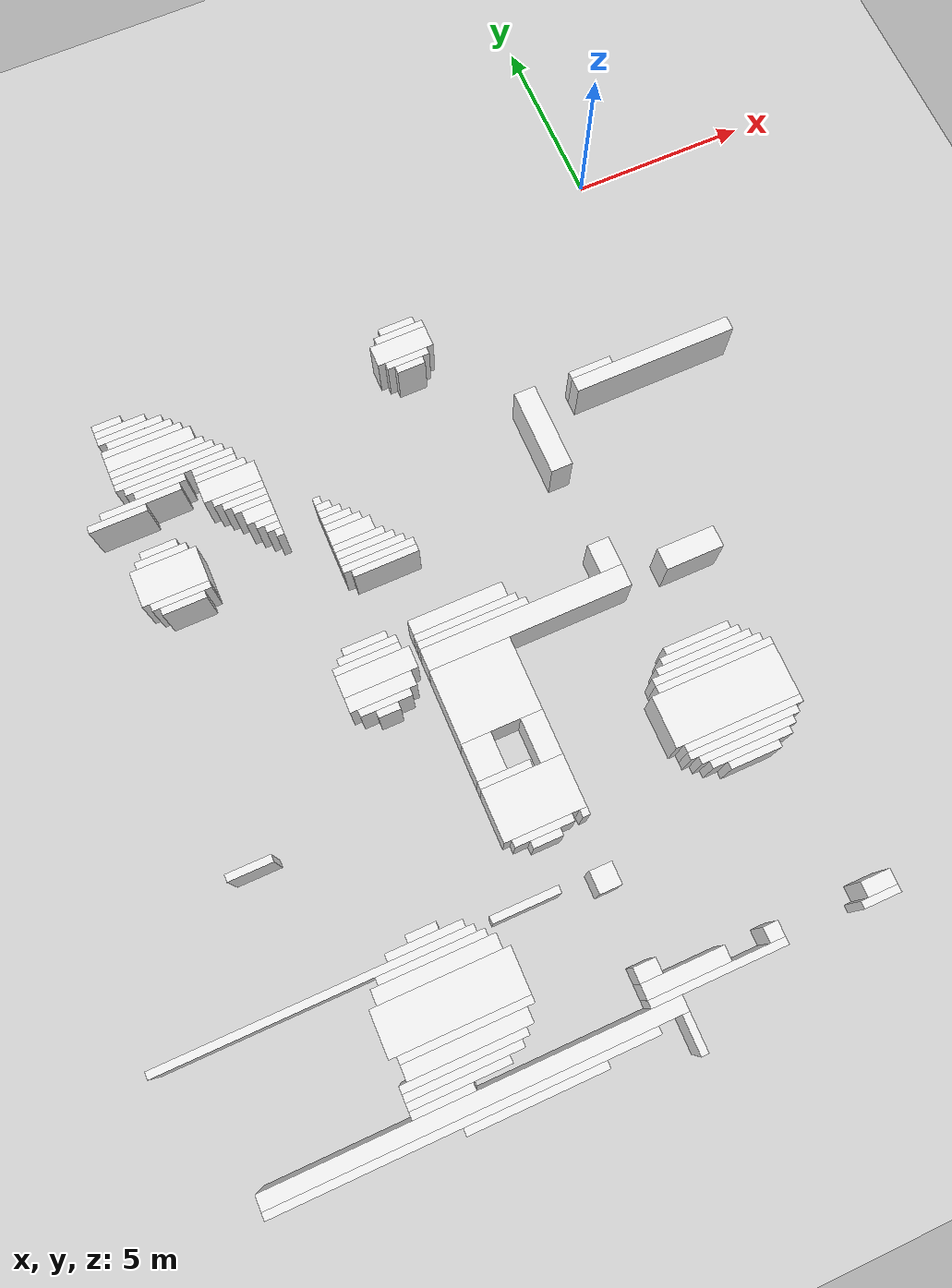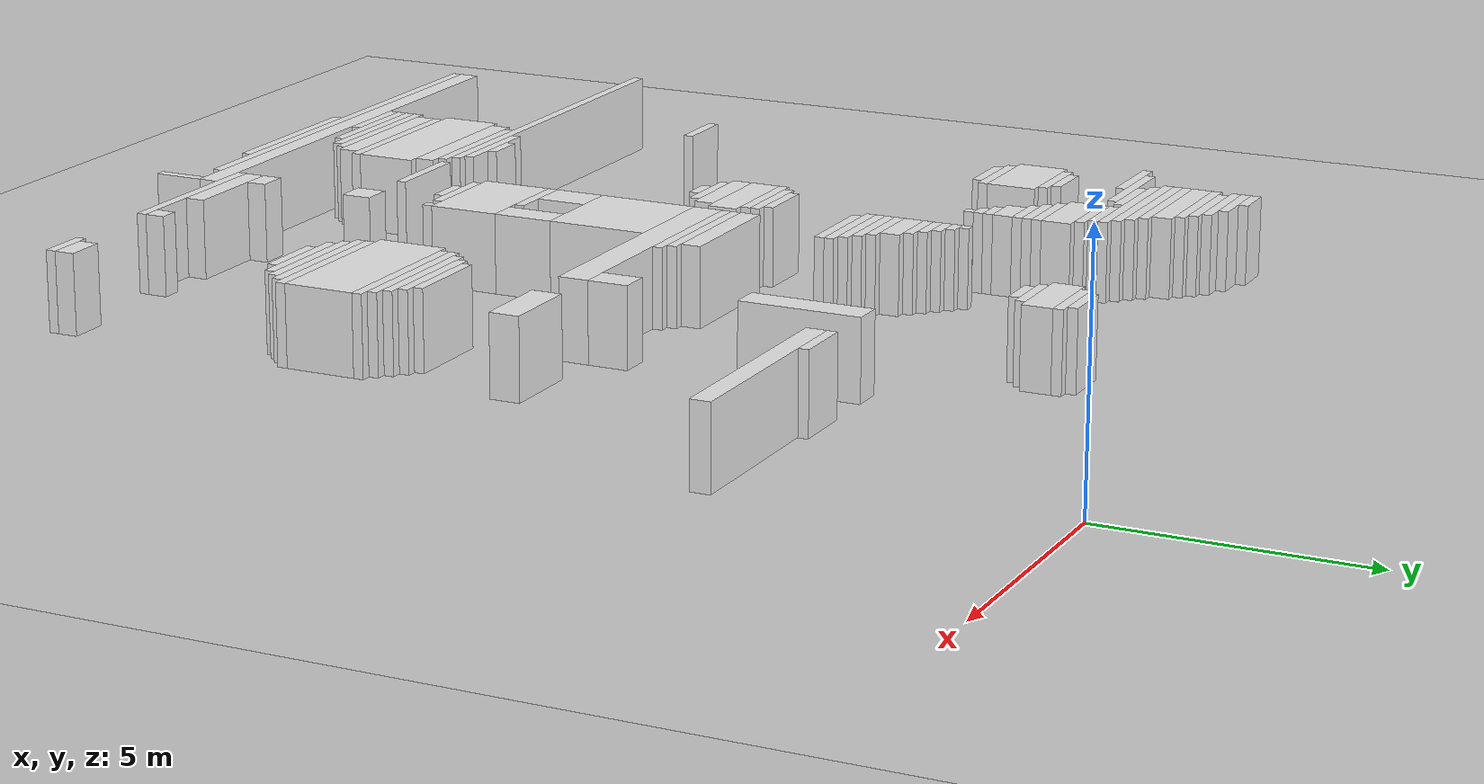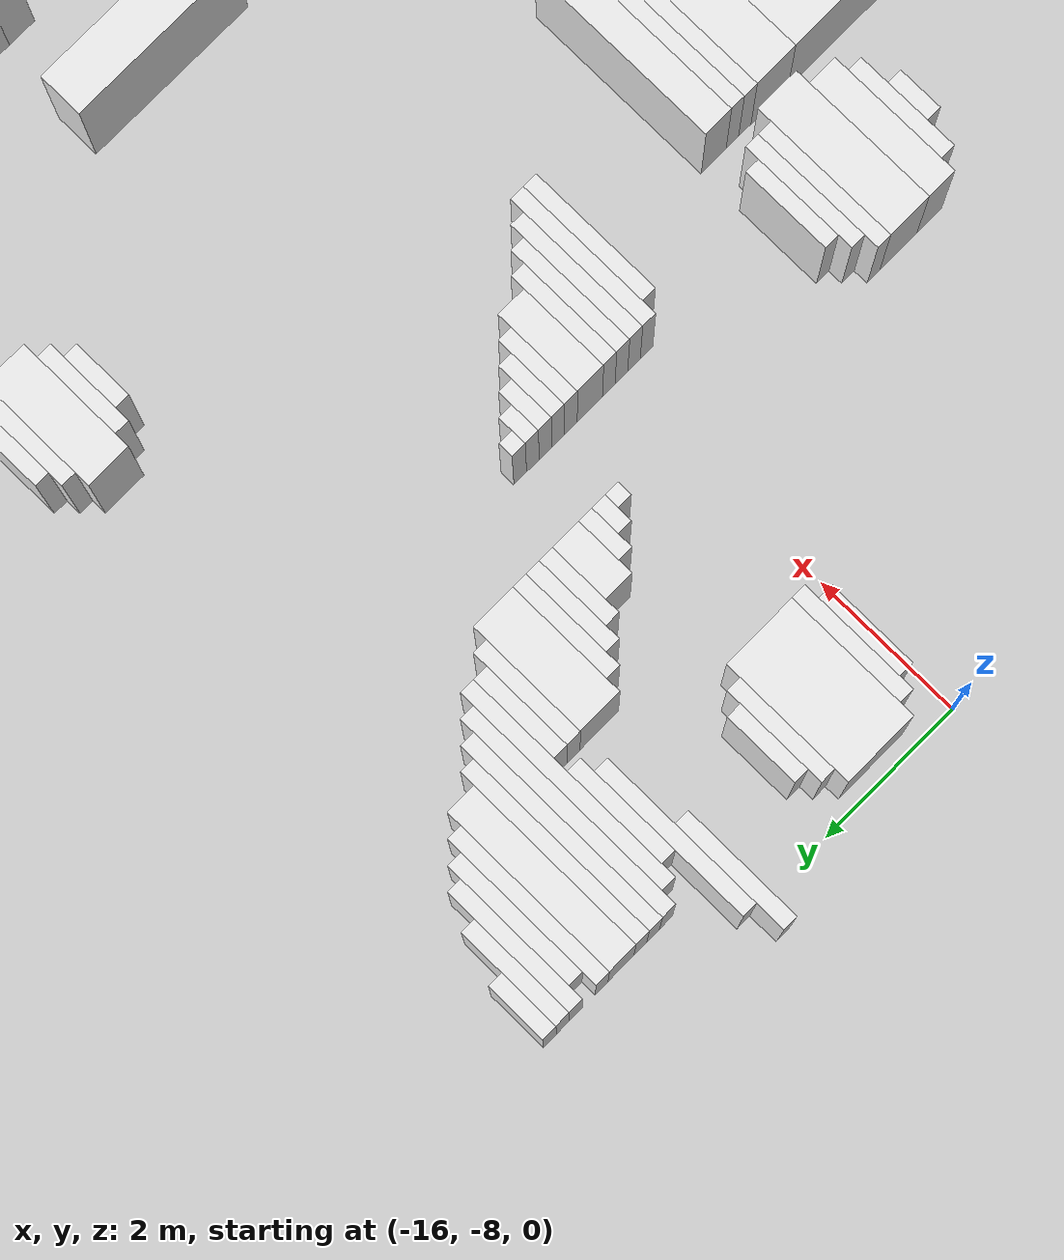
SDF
<sdf version="1.7">
 <world name="default">
  <model name="ground_plane">
   <static>1</static>
   <link name="link">
    <collision name="collision">
     <geometry><plane><normal>0 0 1</normal><size>120 120</size></plane></geometry>
    </collision>
    <visual name="visual">
     <geometry><plane><normal>0 0 1</normal><size>120 120</size></plane></geometry>
     <material>
      <script><uri>file://media/materials/scripts/gazebo.material</uri><name>Gazebo/Grey</name></script>
     </material>
    </visual>
   </link>
  </model>
  <model name="random_complex_01_model">
   <static>1</static>
   <link name="obs_1926">
    <pose>-15.0000 -2.3000 0.8000 0 0 0</pose>
    <collision name="obs_1926_col"><geometry><box><size>0.8000 0.2000 1.6000</size></box></geometry></collision>
    <visual name="obs_1926_vis">
     <geometry><box><size>0.8000 0.2000 1.6000</size></box></geometry>
     <material>
      <script><uri>file://media/materials/scripts/gazebo.material</uri><name>Gazebo/White</name></script>
     </material>
    </visual>
   </link>
   <link name="obs_1933">
    <pose>-14.7000 -2.5000 0.8000 0 0 0</pose>
    <collision name="obs_1933_col"><geometry><box><size>1.4000 0.2000 1.6000</size></box></geometry></collision>
    <visual name="obs_1933_vis">
     <geometry><box><size>1.4000 0.2000 1.6000</size></box></geometry>
     <material>
      <script><uri>file://media/materials/scripts/gazebo.material</uri><name>Gazebo/White</name></script>
     </material>
    </visual>
   </link>
   <link name="obs_1940">
    <pose>-14.5000 -2.7000 0.8000 0 0 0</pose>
    <collision name="obs_1940_col"><geometry><box><size>1.8000 0.2000 1.6000</size></box></geometry></collision>
    <visual name="obs_1940_vis">
     <geometry><box><size>1.8000 0.2000 1.6000</size></box></geometry>
     <material>
      <script><uri>file://media/materials/scripts/gazebo.material</uri><name>Gazebo/White</name></script>
     </material>
    </visual>
   </link>
   <link name="obs_1941">
    <pose>-6.9000 -2.7000 0.8000 0 0 0</pose>
    <collision name="obs_1941_col"><geometry><box><size>1.0000 0.2000 1.6000</size></box></geometry></collision>
    <visual name="obs_1941_vis">
     <geometry><box><size>1.0000 0.2000 1.6000</size></box></geometry>
     <material>
      <script><uri>file://media/materials/scripts/gazebo.material</uri><name>Gazebo/White</name></script>
     </material>
    </visual>
   </link>
   <link name="obs_1949">
    <pose>-14.3000 -2.9000 0.8000 0 0 0</pose>
    <collision name="obs_1949_col"><geometry><box><size>1.8000 0.2000 1.6000</size></box></geometry></collision>
    <visual name="obs_1949_vis">
     <geometry><box><size>1.8000 0.2000 1.6000</size></box></geometry>
     <material>
      <script><uri>file://media/materials/scripts/gazebo.material</uri><name>Gazebo/White</name></script>
     </material>
    </visual>
   </link>
   <link name="obs_1950">
    <pose>-6.9000 -2.9000 0.8000 0 0 0</pose>
    <collision name="obs_1950_col"><geometry><box><size>1.4000 0.2000 1.6000</size></box></geometry></collision>
    <visual name="obs_1950_vis">
     <geometry><box><size>1.4000 0.2000 1.6000</size></box></geometry>
     <material>
      <script><uri>file://media/materials/scripts/gazebo.material</uri><name>Gazebo/White</name></script>
     </material>
    </visual>
   </link>
   <link name="obs_1958">
    <pose>-14.3000 -3.1000 0.8000 0 0 0</pose>
    <collision name="obs_1958_col"><geometry><box><size>2.2000 0.2000 1.6000</size></box></geometry></collision>
    <visual name="obs_1958_vis">
     <geometry><box><size>2.2000 0.2000 1.6000</size></box></geometry>
     <material>
      <script><uri>file://media/materials/scripts/gazebo.material</uri><name>Gazebo/White</name></script>
     </material>
    </visual>
   </link>
   <link name="obs_1968">
    <pose>-7.0000 -3.3000 0.8000 0 0 0</pose>
    <collision name="obs_1968_col"><geometry><box><size>1.6000 0.6000 1.6000</size></box></geometry></collision>
    <visual name="obs_1968_vis">
     <geometry><box><size>1.6000 0.6000 1.6000</size></box></geometry>
     <material>
      <script><uri>file://media/materials/scripts/gazebo.material</uri><name>Gazebo/White</name></script>
     </material>
    </visual>
   </link>
   <link name="obs_1969">
    <pose>-14.2000 -3.4000 0.8000 0 0 0</pose>
    <collision name="obs_1969_col"><geometry><box><size>2.4000 0.4000 1.6000</size></box></geometry></collision>
    <visual name="obs_1969_vis">
     <geometry><box><size>2.4000 0.4000 1.6000</size></box></geometry>
     <material>
      <script><uri>file://media/materials/scripts/gazebo.material</uri><name>Gazebo/White</name></script>
     </material>
    </visual>
   </link>
   <link name="obs_1980">
    <pose>-14.1000 -3.7000 0.8000 0 0 0</pose>
    <collision name="obs_1980_col"><geometry><box><size>2.6000 0.2000 1.6000</size></box></geometry></collision>
    <visual name="obs_1980_vis">
     <geometry><box><size>2.6000 0.2000 1.6000</size></box></geometry>
     <material>
      <script><uri>file://media/materials/scripts/gazebo.material</uri><name>Gazebo/White</name></script>
     </material>
    </visual>
   </link>
   <link name="obs_1981">
    <pose>-7.0000 -3.7000 0.8000 0 0 0</pose>
    <collision name="obs_1981_col"><geometry><box><size>1.2000 0.2000 1.6000</size></box></geometry></collision>
    <visual name="obs_1981_vis">
     <geometry><box><size>1.2000 0.2000 1.6000</size></box></geometry>
     <material>
      <script><uri>file://media/materials/scripts/gazebo.material</uri><name>Gazebo/White</name></script>
     </material>
    </visual>
   </link>
   <link name="obs_1990">
    <pose>-14.0000 -3.9000 0.8000 0 0 0</pose>
    <collision name="obs_1990_col"><geometry><box><size>2.8000 0.2000 1.6000</size></box></geometry></collision>
    <visual name="obs_1990_vis">
     <geometry><box><size>2.8000 0.2000 1.6000</size></box></geometry>
     <material>
      <script><uri>file://media/materials/scripts/gazebo.material</uri><name>Gazebo/White</name></script>
     </material>
    </visual>
   </link>
   <link name="obs_1991">
    <pose>-7.0000 -3.9000 0.8000 0 0 0</pose>
    <collision name="obs_1991_col"><geometry><box><size>0.8000 0.2000 1.6000</size></box></geometry></collision>
    <visual name="obs_1991_vis">
     <geometry><box><size>0.8000 0.2000 1.6000</size></box></geometry>
     <material>
      <script><uri>file://media/materials/scripts/gazebo.material</uri><name>Gazebo/White</name></script>
     </material>
    </visual>
   </link>
   <link name="obs_1999">
    <pose>-13.9000 -4.1000 0.8000 0 0 0</pose>
    <collision name="obs_1999_col"><geometry><box><size>3.0000 0.2000 1.6000</size></box></geometry></collision>
    <visual name="obs_1999_vis">
     <geometry><box><size>3.0000 0.2000 1.6000</size></box></geometry>
     <material>
      <script><uri>file://media/materials/scripts/gazebo.material</uri><name>Gazebo/White</name></script>
     </material>
    </visual>
   </link>
   <link name="obs_2010">
    <pose>-13.7000 -4.3000 0.8000 0 0 0</pose>
    <collision name="obs_2010_col"><geometry><box><size>3.0000 0.2000 1.6000</size></box></geometry></collision>
    <visual name="obs_2010_vis">
     <geometry><box><size>3.0000 0.2000 1.6000</size></box></geometry>
     <material>
      <script><uri>file://media/materials/scripts/gazebo.material</uri><name>Gazebo/White</name></script>
     </material>
    </visual>
   </link>
   <link name="obs_2021">
    <pose>-14.3000 -4.5000 0.8000 0 0 0</pose>
    <collision name="obs_2021_col"><geometry><box><size>1.4000 0.2000 1.6000</size></box></geometry></collision>
    <visual name="obs_2021_vis">
     <geometry><box><size>1.4000 0.2000 1.6000</size></box></geometry>
     <material>
      <script><uri>file://media/materials/scripts/gazebo.material</uri><name>Gazebo/White</name></script>
     </material>
    </visual>
   </link>
   <link name="obs_2022">
    <pose>-12.8000 -4.5000 0.8000 0 0 0</pose>
    <collision name="obs_2022_col"><geometry><box><size>1.2000 0.2000 1.6000</size></box></geometry></collision>
    <visual name="obs_2022_vis">
     <geometry><box><size>1.2000 0.2000 1.6000</size></box></geometry>
     <material>
      <script><uri>file://media/materials/scripts/gazebo.material</uri><name>Gazebo/White</name></script>
     </material>
    </visual>
   </link>
   <link name="obs_2031">
    <pose>-14.9000 -4.7000 0.8000 0 0 0</pose>
    <collision name="obs_2031_col"><geometry><box><size>2.2000 0.2000 1.6000</size></box></geometry></collision>
    <visual name="obs_2031_vis">
     <geometry><box><size>2.2000 0.2000 1.6000</size></box></geometry>
     <material>
      <script><uri>file://media/materials/scripts/gazebo.material</uri><name>Gazebo/White</name></script>
     </material>
    </visual>
   </link>
   <link name="obs_2032">
    <pose>-12.7000 -4.7000 0.8000 0 0 0</pose>
    <collision name="obs_2032_col"><geometry><box><size>1.4000 0.2000 1.6000</size></box></geometry></collision>
    <visual name="obs_2032_vis">
     <geometry><box><size>1.4000 0.2000 1.6000</size></box></geometry>
     <material>
      <script><uri>file://media/materials/scripts/gazebo.material</uri><name>Gazebo/White</name></script>
     </material>
    </visual>
   </link>
   <link name="obs_2039">
    <pose>-15.6000 -4.9000 0.8000 0 0 0</pose>
    <collision name="obs_2039_col"><geometry><box><size>1.6000 0.2000 1.6000</size></box></geometry></collision>
    <visual name="obs_2039_vis">
     <geometry><box><size>1.6000 0.2000 1.6000</size></box></geometry>
     <material>
      <script><uri>file://media/materials/scripts/gazebo.material</uri><name>Gazebo/White</name></script>
     </material>
    </visual>
   </link>
   <link name="obs_2049">
    <pose>-12.6000 -5.1000 0.8000 0 0 0</pose>
    <collision name="obs_2049_col"><geometry><box><size>1.6000 0.6000 1.6000</size></box></geometry></collision>
    <visual name="obs_2049_vis">
     <geometry><box><size>1.6000 0.6000 1.6000</size></box></geometry>
     <material>
      <script><uri>file://media/materials/scripts/gazebo.material</uri><name>Gazebo/White</name></script>
     </material>
    </visual>
   </link>
   <link name="obs_2058">
    <pose>-12.5000 -5.5000 0.8000 0 0 0</pose>
    <collision name="obs_2058_col"><geometry><box><size>1.4000 0.2000 1.6000</size></box></geometry></collision>
    <visual name="obs_2058_vis">
     <geometry><box><size>1.4000 0.2000 1.6000</size></box></geometry>
     <material>
      <script><uri>file://media/materials/scripts/gazebo.material</uri><name>Gazebo/White</name></script>
     </material>
    </visual>
   </link>
   <link name="obs_2066">
    <pose>-12.4000 -5.7000 0.8000 0 0 0</pose>
    <collision name="obs_2066_col"><geometry><box><size>1.2000 0.2000 1.6000</size></box></geometry></collision>
    <visual name="obs_2066_vis">
     <geometry><box><size>1.2000 0.2000 1.6000</size></box></geometry>
     <material>
      <script><uri>file://media/materials/scripts/gazebo.material</uri><name>Gazebo/White</name></script>
     </material>
    </visual>
   </link>
   <link name="obs_2074">
    <pose>-12.3000 -5.9000 0.8000 0 0 0</pose>
    <collision name="obs_2074_col"><geometry><box><size>1.0000 0.2000 1.6000</size></box></geometry></collision>
    <visual name="obs_2074_vis">
     <geometry><box><size>1.0000 0.2000 1.6000</size></box></geometry>
     <material>
      <script><uri>file://media/materials/scripts/gazebo.material</uri><name>Gazebo/White</name></script>
     </material>
    </visual>
   </link>
   <link name="obs_2075">
    <pose>-2.6000 -5.9000 0.8000 0 0 0</pose>
    <collision name="obs_2075_col"><geometry><box><size>1.2000 0.2000 1.6000</size></box></geometry></collision>
    <visual name="obs_2075_vis">
     <geometry><box><size>1.2000 0.2000 1.6000</size></box></geometry>
     <material>
      <script><uri>file://media/materials/scripts/gazebo.material</uri><name>Gazebo/White</name></script>
     </material>
    </visual>
   </link>
   <link name="obs_2081">
    <pose>-14.9000 -6.1000 0.8000 0 0 0</pose>
    <collision name="obs_2081_col"><geometry><box><size>1.0000 0.2000 1.6000</size></box></geometry></collision>
    <visual name="obs_2081_vis">
     <geometry><box><size>1.0000 0.2000 1.6000</size></box></geometry>
     <material>
      <script><uri>file://media/materials/scripts/gazebo.material</uri><name>Gazebo/White</name></script>
     </material>
    </visual>
   </link>
   <link name="obs_2086">
    <pose>-12.2000 -6.2000 0.8000 0 0 0</pose>
    <collision name="obs_2086_col"><geometry><box><size>0.8000 0.4000 1.6000</size></box></geometry></collision>
    <visual name="obs_2086_vis">
     <geometry><box><size>0.8000 0.4000 1.6000</size></box></geometry>
     <material>
      <script><uri>file://media/materials/scripts/gazebo.material</uri><name>Gazebo/White</name></script>
     </material>
    </visual>
   </link>
   <link name="obs_2087">
    <pose>-0.9000 -6.2000 0.8000 0 0 0</pose>
    <collision name="obs_2087_col"><geometry><box><size>4.6000 0.4000 1.6000</size></box></geometry></collision>
    <visual name="obs_2087_vis">
     <geometry><box><size>4.6000 0.4000 1.6000</size></box></geometry>
     <material>
      <script><uri>file://media/materials/scripts/gazebo.material</uri><name>Gazebo/White</name></script>
     </material>
    </visual>
   </link>
   <link name="obs_2089">
    <pose>-14.9000 -6.3000 0.8000 0 0 0</pose>
    <collision name="obs_2089_col"><geometry><box><size>1.4000 0.2000 1.6000</size></box></geometry></collision>
    <visual name="obs_2089_vis">
     <geometry><box><size>1.4000 0.2000 1.6000</size></box></geometry>
     <material>
      <script><uri>file://media/materials/scripts/gazebo.material</uri><name>Gazebo/White</name></script>
     </material>
    </visual>
   </link>
   <link name="obs_2095">
    <pose>-12.1000 -6.5000 0.8000 0 0 0</pose>
    <collision name="obs_2095_col"><geometry><box><size>0.6000 0.2000 1.6000</size></box></geometry></collision>
    <visual name="obs_2095_vis">
     <geometry><box><size>0.6000 0.2000 1.6000</size></box></geometry>
     <material>
      <script><uri>file://media/materials/scripts/gazebo.material</uri><name>Gazebo/White</name></script>
     </material>
    </visual>
   </link>
   <link name="obs_2096">
    <pose>-10.7000 -6.5000 0.8000 0 0 0</pose>
    <collision name="obs_2096_col"><geometry><box><size>0.2000 0.2000 1.6000</size></box></geometry></collision>
    <visual name="obs_2096_vis">
     <geometry><box><size>0.2000 0.2000 1.6000</size></box></geometry>
     <material>
      <script><uri>file://media/materials/scripts/gazebo.material</uri><name>Gazebo/White</name></script>
     </material>
    </visual>
   </link>
   <link name="obs_2104">
    <pose>-12.0000 -6.7000 0.8000 0 0 0</pose>
    <collision name="obs_2104_col"><geometry><box><size>0.4000 0.2000 1.6000</size></box></geometry></collision>
    <visual name="obs_2104_vis">
     <geometry><box><size>0.4000 0.2000 1.6000</size></box></geometry>
     <material>
      <script><uri>file://media/materials/scripts/gazebo.material</uri><name>Gazebo/White</name></script>
     </material>
    </visual>
   </link>
   <link name="obs_2105">
    <pose>-10.6000 -6.7000 0.8000 0 0 0</pose>
    <collision name="obs_2105_col"><geometry><box><size>0.4000 0.2000 1.6000</size></box></geometry></collision>
    <visual name="obs_2105_vis">
     <geometry><box><size>0.4000 0.2000 1.6000</size></box></geometry>
     <material>
      <script><uri>file://media/materials/scripts/gazebo.material</uri><name>Gazebo/White</name></script>
     </material>
    </visual>
   </link>
   <link name="obs_2112">
    <pose>-11.9000 -6.9000 0.8000 0 0 0</pose>
    <collision name="obs_2112_col"><geometry><box><size>0.2000 0.2000 1.6000</size></box></geometry></collision>
    <visual name="obs_2112_vis">
     <geometry><box><size>0.2000 0.2000 1.6000</size></box></geometry>
     <material>
      <script><uri>file://media/materials/scripts/gazebo.material</uri><name>Gazebo/White</name></script>
     </material>
    </visual>
   </link>
   <link name="obs_2113">
    <pose>-10.5000 -6.9000 0.8000 0 0 0</pose>
    <collision name="obs_2113_col"><geometry><box><size>0.6000 0.2000 1.6000</size></box></geometry></collision>
    <visual name="obs_2113_vis">
     <geometry><box><size>0.6000 0.2000 1.6000</size></box></geometry>
     <material>
      <script><uri>file://media/materials/scripts/gazebo.material</uri><name>Gazebo/White</name></script>
     </material>
    </visual>
   </link>
   <link name="obs_2122">
    <pose>-10.4000 -7.1000 0.8000 0 0 0</pose>
    <collision name="obs_2122_col"><geometry><box><size>0.8000 0.2000 1.6000</size></box></geometry></collision>
    <visual name="obs_2122_vis">
     <geometry><box><size>0.8000 0.2000 1.6000</size></box></geometry>
     <material>
      <script><uri>file://media/materials/scripts/gazebo.material</uri><name>Gazebo/White</name></script>
     </material>
    </visual>
   </link>
   <link name="obs_2127">
    <pose>-14.9000 -6.9000 0.8000 0 0 0</pose>
    <collision name="obs_2127_col"><geometry><box><size>1.8000 1.0000 1.6000</size></box></geometry></collision>
    <visual name="obs_2127_vis">
     <geometry><box><size>1.8000 1.0000 1.6000</size></box></geometry>
     <material>
      <script><uri>file://media/materials/scripts/gazebo.material</uri><name>Gazebo/White</name></script>
     </material>
    </visual>
   </link>
   <link name="obs_2131">
    <pose>-10.3000 -7.3000 0.8000 0 0 0</pose>
    <collision name="obs_2131_col"><geometry><box><size>1.0000 0.2000 1.6000</size></box></geometry></collision>
    <visual name="obs_2131_vis">
     <geometry><box><size>1.0000 0.2000 1.6000</size></box></geometry>
     <material>
      <script><uri>file://media/materials/scripts/gazebo.material</uri><name>Gazebo/White</name></script>
     </material>
    </visual>
   </link>
   <link name="obs_2139">
    <pose>-14.8000 -7.5000 0.8000 0 0 0</pose>
    <collision name="obs_2139_col"><geometry><box><size>1.6000 0.2000 1.6000</size></box></geometry></collision>
    <visual name="obs_2139_vis">
     <geometry><box><size>1.6000 0.2000 1.6000</size></box></geometry>
     <material>
      <script><uri>file://media/materials/scripts/gazebo.material</uri><name>Gazebo/White</name></script>
     </material>
    </visual>
   </link>
   <link name="obs_2145">
    <pose>-10.2000 -7.6000 0.8000 0 0 0</pose>
    <collision name="obs_2145_col"><geometry><box><size>1.2000 0.4000 1.6000</size></box></geometry></collision>
    <visual name="obs_2145_vis">
     <geometry><box><size>1.2000 0.4000 1.6000</size></box></geometry>
     <material>
      <script><uri>file://media/materials/scripts/gazebo.material</uri><name>Gazebo/White</name></script>
     </material>
    </visual>
   </link>
   <link name="obs_2147">
    <pose>-14.8000 -7.7000 0.8000 0 0 0</pose>
    <collision name="obs_2147_col"><geometry><box><size>1.2000 0.2000 1.6000</size></box></geometry></collision>
    <visual name="obs_2147_vis">
     <geometry><box><size>1.2000 0.2000 1.6000</size></box></geometry>
     <material>
      <script><uri>file://media/materials/scripts/gazebo.material</uri><name>Gazebo/White</name></script>
     </material>
    </visual>
   </link>
   <link name="obs_2154">
    <pose>-10.1000 -7.9000 0.8000 0 0 0</pose>
    <collision name="obs_2154_col"><geometry><box><size>1.4000 0.2000 1.6000</size></box></geometry></collision>
    <visual name="obs_2154_vis">
     <geometry><box><size>1.4000 0.2000 1.6000</size></box></geometry>
     <material>
      <script><uri>file://media/materials/scripts/gazebo.material</uri><name>Gazebo/White</name></script>
     </material>
    </visual>
   </link>
   <link name="obs_2156">
    <pose>-4.5000 -7.0000 0.8000 0 0 0</pose>
    <collision name="obs_2156_col"><geometry><box><size>0.6000 2.4000 1.6000</size></box></geometry></collision>
    <visual name="obs_2156_vis">
     <geometry><box><size>0.6000 2.4000 1.6000</size></box></geometry>
     <material>
      <script><uri>file://media/materials/scripts/gazebo.material</uri><name>Gazebo/White</name></script>
     </material>
    </visual>
   </link>
   <link name="obs_2160">
    <pose>-10.0000 -8.1000 0.8000 0 0 0</pose>
    <collision name="obs_2160_col"><geometry><box><size>1.6000 0.2000 1.6000</size></box></geometry></collision>
    <visual name="obs_2160_vis">
     <geometry><box><size>1.6000 0.2000 1.6000</size></box></geometry>
     <material>
      <script><uri>file://media/materials/scripts/gazebo.material</uri><name>Gazebo/White</name></script>
     </material>
    </visual>
   </link>
   <link name="obs_2164">
    <pose>-9.9000 -8.3000 0.8000 0 0 0</pose>
    <collision name="obs_2164_col"><geometry><box><size>1.8000 0.2000 1.6000</size></box></geometry></collision>
    <visual name="obs_2164_vis">
     <geometry><box><size>1.8000 0.2000 1.6000</size></box></geometry>
     <material>
      <script><uri>file://media/materials/scripts/gazebo.material</uri><name>Gazebo/White</name></script>
     </material>
    </visual>
   </link>
   <link name="obs_2172">
    <pose>-9.8000 -8.5000 0.8000 0 0 0</pose>
    <collision name="obs_2172_col"><geometry><box><size>2.0000 0.2000 1.6000</size></box></geometry></collision>
    <visual name="obs_2172_vis">
     <geometry><box><size>2.0000 0.2000 1.6000</size></box></geometry>
     <material>
      <script><uri>file://media/materials/scripts/gazebo.material</uri><name>Gazebo/White</name></script>
     </material>
    </visual>
   </link>
   <link name="obs_2180">
    <pose>-9.7000 -8.7000 0.8000 0 0 0</pose>
    <collision name="obs_2180_col"><geometry><box><size>1.8000 0.2000 1.6000</size></box></geometry></collision>
    <visual name="obs_2180_vis">
     <geometry><box><size>1.8000 0.2000 1.6000</size></box></geometry>
     <material>
      <script><uri>file://media/materials/scripts/gazebo.material</uri><name>Gazebo/White</name></script>
     </material>
    </visual>
   </link>
   <link name="obs_2234">
    <pose>-11.0000 -10.5000 0.8000 0 0 0</pose>
    <collision name="obs_2234_col"><geometry><box><size>1.2000 0.2000 1.6000</size></box></geometry></collision>
    <visual name="obs_2234_vis">
     <geometry><box><size>1.2000 0.2000 1.6000</size></box></geometry>
     <material>
      <script><uri>file://media/materials/scripts/gazebo.material</uri><name>Gazebo/White</name></script>
     </material>
    </visual>
   </link>
   <link name="obs_2237">
    <pose>-8.5000 -10.6000 0.8000 0 0 0</pose>
    <collision name="obs_2237_col"><geometry><box><size>2.6000 0.4000 1.6000</size></box></geometry></collision>
    <visual name="obs_2237_vis">
     <geometry><box><size>2.6000 0.4000 1.6000</size></box></geometry>
     <material>
      <script><uri>file://media/materials/scripts/gazebo.material</uri><name>Gazebo/White</name></script>
     </material>
    </visual>
   </link>
   <link name="obs_2241">
    <pose>-11.0000 -10.7000 0.8000 0 0 0</pose>
    <collision name="obs_2241_col"><geometry><box><size>1.6000 0.2000 1.6000</size></box></geometry></collision>
    <visual name="obs_2241_vis">
     <geometry><box><size>1.6000 0.2000 1.6000</size></box></geometry>
     <material>
      <script><uri>file://media/materials/scripts/gazebo.material</uri><name>Gazebo/White</name></script>
     </material>
    </visual>
   </link>
   <link name="obs_2249">
    <pose>-11.1000 -10.9000 0.8000 0 0 0</pose>
    <collision name="obs_2249_col"><geometry><box><size>1.8000 0.2000 1.6000</size></box></geometry></collision>
    <visual name="obs_2249_vis">
     <geometry><box><size>1.8000 0.2000 1.6000</size></box></geometry>
     <material>
      <script><uri>file://media/materials/scripts/gazebo.material</uri><name>Gazebo/White</name></script>
     </material>
    </visual>
   </link>
   <link name="obs_2250">
    <pose>-8.4000 -10.9000 0.8000 0 0 0</pose>
    <collision name="obs_2250_col"><geometry><box><size>2.8000 0.2000 1.6000</size></box></geometry></collision>
    <visual name="obs_2250_vis">
     <geometry><box><size>2.8000 0.2000 1.6000</size></box></geometry>
     <material>
      <script><uri>file://media/materials/scripts/gazebo.material</uri><name>Gazebo/White</name></script>
     </material>
    </visual>
   </link>
   <link name="obs_2254">
    <pose>-4.5000 -10.8000 0.8000 0 0 0</pose>
    <collision name="obs_2254_col"><geometry><box><size>0.6000 0.8000 1.6000</size></box></geometry></collision>
    <visual name="obs_2254_vis">
     <geometry><box><size>0.6000 0.8000 1.6000</size></box></geometry>
     <material>
      <script><uri>file://media/materials/scripts/gazebo.material</uri><name>Gazebo/White</name></script>
     </material>
    </visual>
   </link>
   <link name="obs_2259">
    <pose>-8.3000 -11.1000 0.8000 0 0 0</pose>
    <collision name="obs_2259_col"><geometry><box><size>3.0000 0.2000 1.6000</size></box></geometry></collision>
    <visual name="obs_2259_vis">
     <geometry><box><size>3.0000 0.2000 1.6000</size></box></geometry>
     <material>
      <script><uri>file://media/materials/scripts/gazebo.material</uri><name>Gazebo/White</name></script>
     </material>
    </visual>
   </link>
   <link name="obs_2267">
    <pose>-11.0000 -11.3000 0.8000 0 0 0</pose>
    <collision name="obs_2267_col"><geometry><box><size>2.0000 0.6000 1.6000</size></box></geometry></collision>
    <visual name="obs_2267_vis">
     <geometry><box><size>2.0000 0.6000 1.6000</size></box></geometry>
     <material>
      <script><uri>file://media/materials/scripts/gazebo.material</uri><name>Gazebo/White</name></script>
     </material>
    </visual>
   </link>
   <link name="obs_2273">
    <pose>-7.0000 -11.5000 0.8000 0 0 0</pose>
    <collision name="obs_2273_col"><geometry><box><size>5.6000 0.6000 1.6000</size></box></geometry></collision>
    <visual name="obs_2273_vis">
     <geometry><box><size>5.6000 0.6000 1.6000</size></box></geometry>
     <material>
      <script><uri>file://media/materials/scripts/gazebo.material</uri><name>Gazebo/White</name></script>
     </material>
    </visual>
   </link>
   <link name="obs_2274">
    <pose>-2.4000 -11.5000 0.8000 0 0 0</pose>
    <collision name="obs_2274_col"><geometry><box><size>1.6000 0.6000 1.6000</size></box></geometry></collision>
    <visual name="obs_2274_vis">
     <geometry><box><size>1.6000 0.6000 1.6000</size></box></geometry>
     <material>
      <script><uri>file://media/materials/scripts/gazebo.material</uri><name>Gazebo/White</name></script>
     </material>
    </visual>
   </link>
   <link name="obs_2280">
    <pose>-11.1000 -11.8000 0.8000 0 0 0</pose>
    <collision name="obs_2280_col"><geometry><box><size>1.8000 0.4000 1.6000</size></box></geometry></collision>
    <visual name="obs_2280_vis">
     <geometry><box><size>1.8000 0.4000 1.6000</size></box></geometry>
     <material>
      <script><uri>file://media/materials/scripts/gazebo.material</uri><name>Gazebo/White</name></script>
     </material>
    </visual>
   </link>
   <link name="obs_2289">
    <pose>-11.1000 -12.1000 0.8000 0 0 0</pose>
    <collision name="obs_2289_col"><geometry><box><size>1.4000 0.2000 1.6000</size></box></geometry></collision>
    <visual name="obs_2289_vis">
     <geometry><box><size>1.4000 0.2000 1.6000</size></box></geometry>
     <material>
      <script><uri>file://media/materials/scripts/gazebo.material</uri><name>Gazebo/White</name></script>
     </material>
    </visual>
   </link>
   <link name="obs_2291">
    <pose>-11.1000 -12.3000 0.8000 0 0 0</pose>
    <collision name="obs_2291_col"><geometry><box><size>0.6000 0.2000 1.6000</size></box></geometry></collision>
    <visual name="obs_2291_vis">
     <geometry><box><size>0.6000 0.2000 1.6000</size></box></geometry>
     <material>
      <script><uri>file://media/materials/scripts/gazebo.material</uri><name>Gazebo/White</name></script>
     </material>
    </visual>
   </link>
   <link name="obs_2338">
    <pose>-8.7000 -12.8000 0.8000 0 0 0</pose>
    <collision name="obs_2338_col"><geometry><box><size>2.2000 2.0000 1.6000</size></box></geometry></collision>
    <visual name="obs_2338_vis">
     <geometry><box><size>2.2000 2.0000 1.6000</size></box></geometry>
     <material>
      <script><uri>file://media/materials/scripts/gazebo.material</uri><name>Gazebo/White</name></script>
     </material>
    </visual>
   </link>
   <link name="obs_2341">
    <pose>-3.3000 -13.7000 0.8000 0 0 0</pose>
    <collision name="obs_2341_col"><geometry><box><size>1.8000 0.2000 1.6000</size></box></geometry></collision>
    <visual name="obs_2341_vis">
     <geometry><box><size>1.8000 0.2000 1.6000</size></box></geometry>
     <material>
      <script><uri>file://media/materials/scripts/gazebo.material</uri><name>Gazebo/White</name></script>
     </material>
    </visual>
   </link>
   <link name="obs_2348">
    <pose>-3.3000 -13.9000 0.8000 0 0 0</pose>
    <collision name="obs_2348_col"><geometry><box><size>2.2000 0.2000 1.6000</size></box></geometry></collision>
    <visual name="obs_2348_vis">
     <geometry><box><size>2.2000 0.2000 1.6000</size></box></geometry>
     <material>
      <script><uri>file://media/materials/scripts/gazebo.material</uri><name>Gazebo/White</name></script>
     </material>
    </visual>
   </link>
   <link name="obs_2353">
    <pose>-3.3000 -14.1000 0.8000 0 0 0</pose>
    <collision name="obs_2353_col"><geometry><box><size>2.6000 0.2000 1.6000</size></box></geometry></collision>
    <visual name="obs_2353_vis">
     <geometry><box><size>2.6000 0.2000 1.6000</size></box></geometry>
     <material>
      <script><uri>file://media/materials/scripts/gazebo.material</uri><name>Gazebo/White</name></script>
     </material>
    </visual>
   </link>
   <link name="obs_2360">
    <pose>-3.3000 -14.3000 0.8000 0 0 0</pose>
    <collision name="obs_2360_col"><geometry><box><size>3.0000 0.2000 1.6000</size></box></geometry></collision>
    <visual name="obs_2360_vis">
     <geometry><box><size>3.0000 0.2000 1.6000</size></box></geometry>
     <material>
      <script><uri>file://media/materials/scripts/gazebo.material</uri><name>Gazebo/White</name></script>
     </material>
    </visual>
   </link>
   <link name="obs_2367">
    <pose>-15.6000 -14.5000 0.8000 0 0 0</pose>
    <collision name="obs_2367_col"><geometry><box><size>1.2000 0.2000 1.6000</size></box></geometry></collision>
    <visual name="obs_2367_vis">
     <geometry><box><size>1.2000 0.2000 1.6000</size></box></geometry>
     <material>
      <script><uri>file://media/materials/scripts/gazebo.material</uri><name>Gazebo/White</name></script>
     </material>
    </visual>
   </link>
   <link name="obs_2368">
    <pose>-3.2000 -14.5000 0.8000 0 0 0</pose>
    <collision name="obs_2368_col"><geometry><box><size>3.2000 0.2000 1.6000</size></box></geometry></collision>
    <visual name="obs_2368_vis">
     <geometry><box><size>3.2000 0.2000 1.6000</size></box></geometry>
     <material>
      <script><uri>file://media/materials/scripts/gazebo.material</uri><name>Gazebo/White</name></script>
     </material>
    </visual>
   </link>
   <link name="obs_2374">
    <pose>-9.4000 -14.3000 0.8000 0 0 0</pose>
    <collision name="obs_2374_col"><geometry><box><size>0.8000 1.0000 1.6000</size></box></geometry></collision>
    <visual name="obs_2374_vis">
     <geometry><box><size>0.8000 1.0000 1.6000</size></box></geometry>
     <material>
      <script><uri>file://media/materials/scripts/gazebo.material</uri><name>Gazebo/White</name></script>
     </material>
    </visual>
   </link>
   <link name="obs_2383">
    <pose>-7.9000 -14.4000 0.8000 0 0 0</pose>
    <collision name="obs_2383_col"><geometry><box><size>0.6000 1.2000 1.6000</size></box></geometry></collision>
    <visual name="obs_2383_vis">
     <geometry><box><size>0.6000 1.2000 1.6000</size></box></geometry>
     <material>
      <script><uri>file://media/materials/scripts/gazebo.material</uri><name>Gazebo/White</name></script>
     </material>
    </visual>
   </link>
   <link name="obs_2386">
    <pose>-9.1000 -14.9000 0.8000 0 0 0</pose>
    <collision name="obs_2386_col"><geometry><box><size>1.4000 0.2000 1.6000</size></box></geometry></collision>
    <visual name="obs_2386_vis">
     <geometry><box><size>1.4000 0.2000 1.6000</size></box></geometry>
     <material>
      <script><uri>file://media/materials/scripts/gazebo.material</uri><name>Gazebo/White</name></script>
     </material>
    </visual>
   </link>
   <link name="obs_2440">
    <pose>-3.3000 -15.3000 0.8000 0 0 0</pose>
    <collision name="obs_2440_col"><geometry><box><size>3.4000 1.4000 1.6000</size></box></geometry></collision>
    <visual name="obs_2440_vis">
     <geometry><box><size>3.4000 1.4000 1.6000</size></box></geometry>
     <material>
      <script><uri>file://media/materials/scripts/gazebo.material</uri><name>Gazebo/White</name></script>
     </material>
    </visual>
   </link>
   <link name="obs_2457">
    <pose>-3.2000 -16.1000 0.8000 0 0 0</pose>
    <collision name="obs_2457_col"><geometry><box><size>3.2000 0.2000 1.6000</size></box></geometry></collision>
    <visual name="obs_2457_vis">
     <geometry><box><size>3.2000 0.2000 1.6000</size></box></geometry>
     <material>
      <script><uri>file://media/materials/scripts/gazebo.material</uri><name>Gazebo/White</name></script>
     </material>
    </visual>
   </link>
   <link name="obs_2463">
    <pose>-8.7000 -15.7000 0.8000 0 0 0</pose>
    <collision name="obs_2463_col"><geometry><box><size>2.2000 1.4000 1.6000</size></box></geometry></collision>
    <visual name="obs_2463_vis">
     <geometry><box><size>2.2000 1.4000 1.6000</size></box></geometry>
     <material>
      <script><uri>file://media/materials/scripts/gazebo.material</uri><name>Gazebo/White</name></script>
     </material>
    </visual>
   </link>
   <link name="obs_2467">
    <pose>-3.3000 -16.3000 0.8000 0 0 0</pose>
    <collision name="obs_2467_col"><geometry><box><size>3.0000 0.2000 1.6000</size></box></geometry></collision>
    <visual name="obs_2467_vis">
     <geometry><box><size>3.0000 0.2000 1.6000</size></box></geometry>
     <material>
      <script><uri>file://media/materials/scripts/gazebo.material</uri><name>Gazebo/White</name></script>
     </material>
    </visual>
   </link>
   <link name="obs_2479">
    <pose>-8.8000 -16.5000 0.8000 0 0 0</pose>
    <collision name="obs_2479_col"><geometry><box><size>1.6000 0.2000 1.6000</size></box></geometry></collision>
    <visual name="obs_2479_vis">
     <geometry><box><size>1.6000 0.2000 1.6000</size></box></geometry>
     <material>
      <script><uri>file://media/materials/scripts/gazebo.material</uri><name>Gazebo/White</name></script>
     </material>
    </visual>
   </link>
   <link name="obs_2480">
    <pose>-7.7000 -16.5000 0.8000 0 0 0</pose>
    <collision name="obs_2480_col"><geometry><box><size>0.2000 0.2000 1.6000</size></box></geometry></collision>
    <visual name="obs_2480_vis">
     <geometry><box><size>0.2000 0.2000 1.6000</size></box></geometry>
     <material>
      <script><uri>file://media/materials/scripts/gazebo.material</uri><name>Gazebo/White</name></script>
     </material>
    </visual>
   </link>
   <link name="obs_2481">
    <pose>-3.3000 -16.5000 0.8000 0 0 0</pose>
    <collision name="obs_2481_col"><geometry><box><size>2.6000 0.2000 1.6000</size></box></geometry></collision>
    <visual name="obs_2481_vis">
     <geometry><box><size>2.6000 0.2000 1.6000</size></box></geometry>
     <material>
      <script><uri>file://media/materials/scripts/gazebo.material</uri><name>Gazebo/White</name></script>
     </material>
    </visual>
   </link>
   <link name="obs_2486">
    <pose>-8.8000 -16.7000 0.8000 0 0 0</pose>
    <collision name="obs_2486_col"><geometry><box><size>0.8000 0.2000 1.6000</size></box></geometry></collision>
    <visual name="obs_2486_vis">
     <geometry><box><size>0.8000 0.2000 1.6000</size></box></geometry>
     <material>
      <script><uri>file://media/materials/scripts/gazebo.material</uri><name>Gazebo/White</name></script>
     </material>
    </visual>
   </link>
   <link name="obs_2487">
    <pose>-3.3000 -16.7000 0.8000 0 0 0</pose>
    <collision name="obs_2487_col"><geometry><box><size>2.2000 0.2000 1.6000</size></box></geometry></collision>
    <visual name="obs_2487_vis">
     <geometry><box><size>2.2000 0.2000 1.6000</size></box></geometry>
     <material>
      <script><uri>file://media/materials/scripts/gazebo.material</uri><name>Gazebo/White</name></script>
     </material>
    </visual>
   </link>
   <link name="obs_2489">
    <pose>-3.3000 -16.9000 0.8000 0 0 0</pose>
    <collision name="obs_2489_col"><geometry><box><size>1.4000 0.2000 1.6000</size></box></geometry></collision>
    <visual name="obs_2489_vis">
     <geometry><box><size>1.4000 0.2000 1.6000</size></box></geometry>
     <material>
      <script><uri>file://media/materials/scripts/gazebo.material</uri><name>Gazebo/White</name></script>
     </material>
    </visual>
   </link>
   <link name="obs_2497">
    <pose>-12.4000 -17.5000 0.8000 0 0 0</pose>
    <collision name="obs_2497_col"><geometry><box><size>0.8000 0.2000 1.6000</size></box></geometry></collision>
    <visual name="obs_2497_vis">
     <geometry><box><size>0.8000 0.2000 1.6000</size></box></geometry>
     <material>
      <script><uri>file://media/materials/scripts/gazebo.material</uri><name>Gazebo/White</name></script>
     </material>
    </visual>
   </link>
   <link name="obs_2503">
    <pose>-12.4000 -17.7000 0.8000 0 0 0</pose>
    <collision name="obs_2503_col"><geometry><box><size>2.0000 0.2000 1.6000</size></box></geometry></collision>
    <visual name="obs_2503_vis">
     <geometry><box><size>2.0000 0.2000 1.6000</size></box></geometry>
     <material>
      <script><uri>file://media/materials/scripts/gazebo.material</uri><name>Gazebo/White</name></script>
     </material>
    </visual>
   </link>
   <link name="obs_2509">
    <pose>-15.3000 -17.9000 0.8000 0 0 0</pose>
    <collision name="obs_2509_col"><geometry><box><size>8.2000 0.2000 1.6000</size></box></geometry></collision>
    <visual name="obs_2509_vis">
     <geometry><box><size>8.2000 0.2000 1.6000</size></box></geometry>
     <material>
      <script><uri>file://media/materials/scripts/gazebo.material</uri><name>Gazebo/White</name></script>
     </material>
    </visual>
   </link>
   <link name="obs_2510">
    <pose>-9.9000 -17.9000 0.8000 0 0 0</pose>
    <collision name="obs_2510_col"><geometry><box><size>1.8000 0.2000 1.6000</size></box></geometry></collision>
    <visual name="obs_2510_vis">
     <geometry><box><size>1.8000 0.2000 1.6000</size></box></geometry>
     <material>
      <script><uri>file://media/materials/scripts/gazebo.material</uri><name>Gazebo/White</name></script>
     </material>
    </visual>
   </link>
   <link name="obs_2515">
    <pose>-12.4000 -18.1000 0.8000 0 0 0</pose>
    <collision name="obs_2515_col"><geometry><box><size>2.8000 0.2000 1.6000</size></box></geometry></collision>
    <visual name="obs_2515_vis">
     <geometry><box><size>2.8000 0.2000 1.6000</size></box></geometry>
     <material>
      <script><uri>file://media/materials/scripts/gazebo.material</uri><name>Gazebo/White</name></script>
     </material>
    </visual>
   </link>
   <link name="obs_2520">
    <pose>-7.9000 -18.1000 0.8000 0 0 0</pose>
    <collision name="obs_2520_col"><geometry><box><size>0.6000 0.6000 1.6000</size></box></geometry></collision>
    <visual name="obs_2520_vis">
     <geometry><box><size>0.6000 0.6000 1.6000</size></box></geometry>
     <material>
      <script><uri>file://media/materials/scripts/gazebo.material</uri><name>Gazebo/White</name></script>
     </material>
    </visual>
   </link>
   <link name="obs_2526">
    <pose>-12.4000 -18.4000 0.8000 0 0 0</pose>
    <collision name="obs_2526_col"><geometry><box><size>3.2000 0.4000 1.6000</size></box></geometry></collision>
    <visual name="obs_2526_vis">
     <geometry><box><size>3.2000 0.4000 1.6000</size></box></geometry>
     <material>
      <script><uri>file://media/materials/scripts/gazebo.material</uri><name>Gazebo/White</name></script>
     </material>
    </visual>
   </link>
   <link name="obs_2565">
    <pose>-12.4000 -19.2000 0.8000 0 0 0</pose>
    <collision name="obs_2565_col"><geometry><box><size>3.6000 1.2000 1.6000</size></box></geometry></collision>
    <visual name="obs_2565_vis">
     <geometry><box><size>3.6000 1.2000 1.6000</size></box></geometry>
     <material>
      <script><uri>file://media/materials/scripts/gazebo.material</uri><name>Gazebo/White</name></script>
     </material>
    </visual>
   </link>
   <link name="obs_2576">
    <pose>-12.3000 -19.9000 0.8000 0 0 0</pose>
    <collision name="obs_2576_col"><geometry><box><size>3.4000 0.2000 1.6000</size></box></geometry></collision>
    <visual name="obs_2576_vis">
     <geometry><box><size>3.4000 0.2000 1.6000</size></box></geometry>
     <material>
      <script><uri>file://media/materials/scripts/gazebo.material</uri><name>Gazebo/White</name></script>
     </material>
    </visual>
   </link>
   <link name="obs_2586">
    <pose>-12.4000 -20.2000 0.8000 0 0 0</pose>
    <collision name="obs_2586_col"><geometry><box><size>3.2000 0.4000 1.6000</size></box></geometry></collision>
    <visual name="obs_2586_vis">
     <geometry><box><size>3.2000 0.4000 1.6000</size></box></geometry>
     <material>
      <script><uri>file://media/materials/scripts/gazebo.material</uri><name>Gazebo/White</name></script>
     </material>
    </visual>
   </link>
   <link name="obs_2593">
    <pose>-7.9000 -20.4000 0.8000 0 0 0</pose>
    <collision name="obs_2593_col"><geometry><box><size>0.6000 0.4000 1.6000</size></box></geometry></collision>
    <visual name="obs_2593_vis">
     <geometry><box><size>0.6000 0.4000 1.6000</size></box></geometry>
     <material>
      <script><uri>file://media/materials/scripts/gazebo.material</uri><name>Gazebo/White</name></script>
     </material>
    </visual>
   </link>
   <link name="obs_2596">
    <pose>-12.6000 -20.5000 0.8000 0 0 0</pose>
    <collision name="obs_2596_col"><geometry><box><size>3.2000 0.2000 1.6000</size></box></geometry></collision>
    <visual name="obs_2596_vis">
     <geometry><box><size>3.2000 0.2000 1.6000</size></box></geometry>
     <material>
      <script><uri>file://media/materials/scripts/gazebo.material</uri><name>Gazebo/White</name></script>
     </material>
    </visual>
   </link>
   <link name="obs_2604">
    <pose>-12.7000 -20.7000 0.8000 0 0 0</pose>
    <collision name="obs_2604_col"><geometry><box><size>3.0000 0.2000 1.6000</size></box></geometry></collision>
    <visual name="obs_2604_vis">
     <geometry><box><size>3.0000 0.2000 1.6000</size></box></geometry>
     <material>
      <script><uri>file://media/materials/scripts/gazebo.material</uri><name>Gazebo/White</name></script>
     </material>
    </visual>
   </link>
   <link name="obs_2607">
    <pose>-7.1000 -20.8000 0.8000 0 0 0</pose>
    <collision name="obs_2607_col"><geometry><box><size>2.2000 0.4000 1.6000</size></box></geometry></collision>
    <visual name="obs_2607_vis">
     <geometry><box><size>2.2000 0.4000 1.6000</size></box></geometry>
     <material>
      <script><uri>file://media/materials/scripts/gazebo.material</uri><name>Gazebo/White</name></script>
     </material>
    </visual>
   </link>
   <link name="obs_2608">
    <pose>-4.8000 -20.8000 0.8000 0 0 0</pose>
    <collision name="obs_2608_col"><geometry><box><size>0.4000 0.4000 1.6000</size></box></geometry></collision>
    <visual name="obs_2608_vis">
     <geometry><box><size>0.4000 0.4000 1.6000</size></box></geometry>
     <material>
      <script><uri>file://media/materials/scripts/gazebo.material</uri><name>Gazebo/White</name></script>
     </material>
    </visual>
   </link>
   <link name="obs_2609">
    <pose>-2.0000 -20.8000 0.8000 0 0 0</pose>
    <collision name="obs_2609_col"><geometry><box><size>0.8000 0.4000 1.6000</size></box></geometry></collision>
    <visual name="obs_2609_vis">
     <geometry><box><size>0.8000 0.4000 1.6000</size></box></geometry>
     <material>
      <script><uri>file://media/materials/scripts/gazebo.material</uri><name>Gazebo/White</name></script>
     </material>
    </visual>
   </link>
   <link name="obs_2613">
    <pose>-12.9000 -20.9000 0.8000 0 0 0</pose>
    <collision name="obs_2613_col"><geometry><box><size>2.6000 0.2000 1.6000</size></box></geometry></collision>
    <visual name="obs_2613_vis">
     <geometry><box><size>2.6000 0.2000 1.6000</size></box></geometry>
     <material>
      <script><uri>file://media/materials/scripts/gazebo.material</uri><name>Gazebo/White</name></script>
     </material>
    </visual>
   </link>
   <link name="obs_2622">
    <pose>-13.4000 -21.1000 0.8000 0 0 0</pose>
    <collision name="obs_2622_col"><geometry><box><size>1.6000 0.2000 1.6000</size></box></geometry></collision>
    <visual name="obs_2622_vis">
     <geometry><box><size>1.6000 0.2000 1.6000</size></box></geometry>
     <material>
      <script><uri>file://media/materials/scripts/gazebo.material</uri><name>Gazebo/White</name></script>
     </material>
    </visual>
   </link>
   <link name="obs_2623">
    <pose>-6.4000 -21.1000 0.8000 0 0 0</pose>
    <collision name="obs_2623_col"><geometry><box><size>3.6000 0.2000 1.6000</size></box></geometry></collision>
    <visual name="obs_2623_vis">
     <geometry><box><size>3.6000 0.2000 1.6000</size></box></geometry>
     <material>
      <script><uri>file://media/materials/scripts/gazebo.material</uri><name>Gazebo/White</name></script>
     </material>
    </visual>
   </link>
   <link name="obs_2624">
    <pose>-2.1000 -21.1000 0.8000 0 0 0</pose>
    <collision name="obs_2624_col"><geometry><box><size>1.0000 0.2000 1.6000</size></box></geometry></collision>
    <visual name="obs_2624_vis">
     <geometry><box><size>1.0000 0.2000 1.6000</size></box></geometry>
     <material>
      <script><uri>file://media/materials/scripts/gazebo.material</uri><name>Gazebo/White</name></script>
     </material>
    </visual>
   </link>
   <link name="obs_2633">
    <pose>-12.7000 -21.4000 0.8000 0 0 0</pose>
    <collision name="obs_2633_col"><geometry><box><size>10.6000 0.4000 1.6000</size></box></geometry></collision>
    <visual name="obs_2633_vis">
     <geometry><box><size>10.6000 0.4000 1.6000</size></box></geometry>
     <material>
      <script><uri>file://media/materials/scripts/gazebo.material</uri><name>Gazebo/White</name></script>
     </material>
    </visual>
   </link>
   <link name="obs_2639">
    <pose>-13.1000 -21.7000 0.8000 0 0 0</pose>
    <collision name="obs_2639_col"><geometry><box><size>9.8000 0.2000 1.6000</size></box></geometry></collision>
    <visual name="obs_2639_vis">
     <geometry><box><size>9.8000 0.2000 1.6000</size></box></geometry>
     <material>
      <script><uri>file://media/materials/scripts/gazebo.material</uri><name>Gazebo/White</name></script>
     </material>
    </visual>
   </link>
   <link name="obs_2643">
    <pose>-11.4000 -21.9000 0.8000 0 0 0</pose>
    <collision name="obs_2643_col"><geometry><box><size>3.6000 0.2000 1.6000</size></box></geometry></collision>
    <visual name="obs_2643_vis">
     <geometry><box><size>3.6000 0.2000 1.6000</size></box></geometry>
     <material>
      <script><uri>file://media/materials/scripts/gazebo.material</uri><name>Gazebo/White</name></script>
     </material>
    </visual>
   </link>
   <link name="obs_2659">
    <pose>-7.5000 -22.1000 0.8000 0 0 0</pose>
    <collision name="obs_2659_col"><geometry><box><size>0.2000 1.0000 1.6000</size></box></geometry></collision>
    <visual name="obs_2659_vis">
     <geometry><box><size>0.2000 1.0000 1.6000</size></box></geometry>
     <material>
      <script><uri>file://media/materials/scripts/gazebo.material</uri><name>Gazebo/White</name></script>
     </material>
    </visual>
   </link>
  </model>
 </world>
</sdf>
